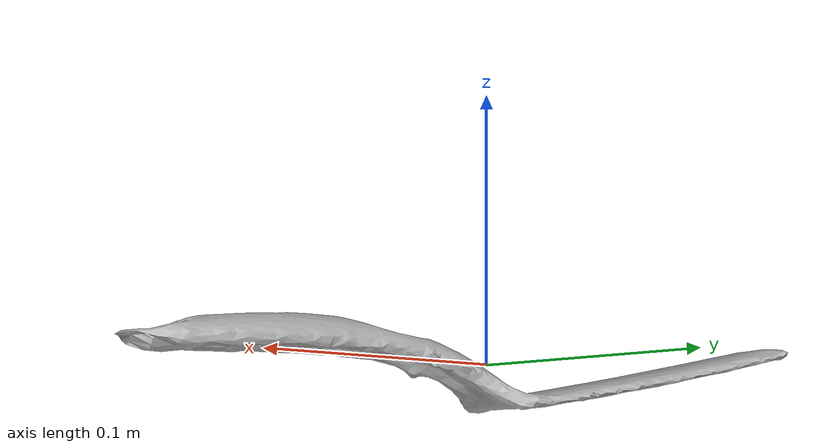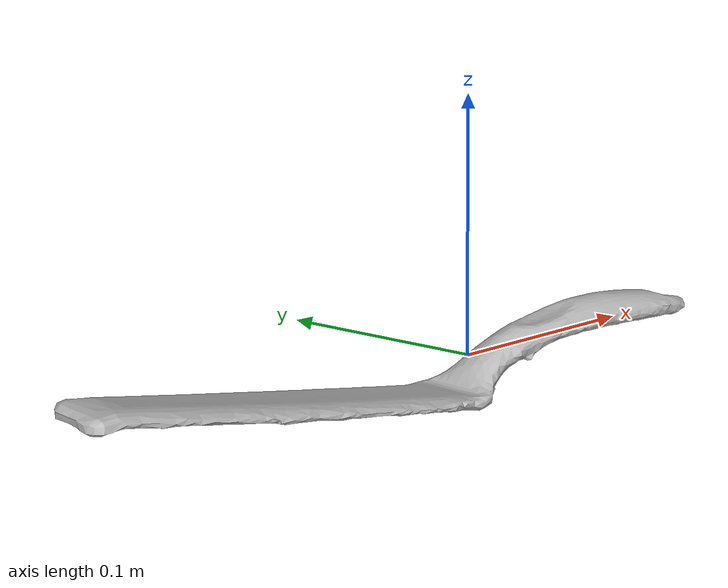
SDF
<?xml version='1.0'?>
<sdf version='1.6'>
	<model name='b_thin_spatula'>
		<static>false</static>
		<pose>0 0 0 0 0 0</pose>

		<link name='link'>
			<inertial>
			<mass>0.11</mass>
			<pose>2.3574e-18 -4.8479e-20 1.6546e-18 0 0 0</pose>
				<inertia>
					<ixx>1.7189e-07</ixx>
					<ixy>0</ixy>
					<ixz>0</ixz>
					<iyy>1.904e-07</iyy>
					<iyz>0</iyz>
					<izz>3.3856e-08</izz>
				</inertia>
			</inertial>
			<sensor name="tool_contact_sensor" type="contact">
				<always_on>true</always_on>
				<update_rate>30.0</update_rate>
				<contact>
					<collision>collision</collision>
				</contact>
				<plugin name="tool_bumper" filename="libgazebo_ros_bumper.so">
					<bumperTopicName>tool_contact_sensor_state</bumperTopicName>
					<frameName>world</frameName>
				</plugin>
			</sensor>
			<collision name='collision'>
				<geometry>
					<mesh>
						<uri>model://b_thin_spatula/b_thin_spatula.dae</uri>
					</mesh>
				</geometry>
				<surface>
					<friction>
						<ode>
							<mu>0.2</mu>
							<mu2>0.2</mu2>
						</ode>
					</friction>
				</surface>
			</collision>
			<visual name='visual'>
				<geometry>
					<mesh>
						<uri>model://b_thin_spatula/b_thin_spatula.dae</uri>
					</mesh>
				</geometry>
			</visual>
		</link>
	</model>
</sdf>
